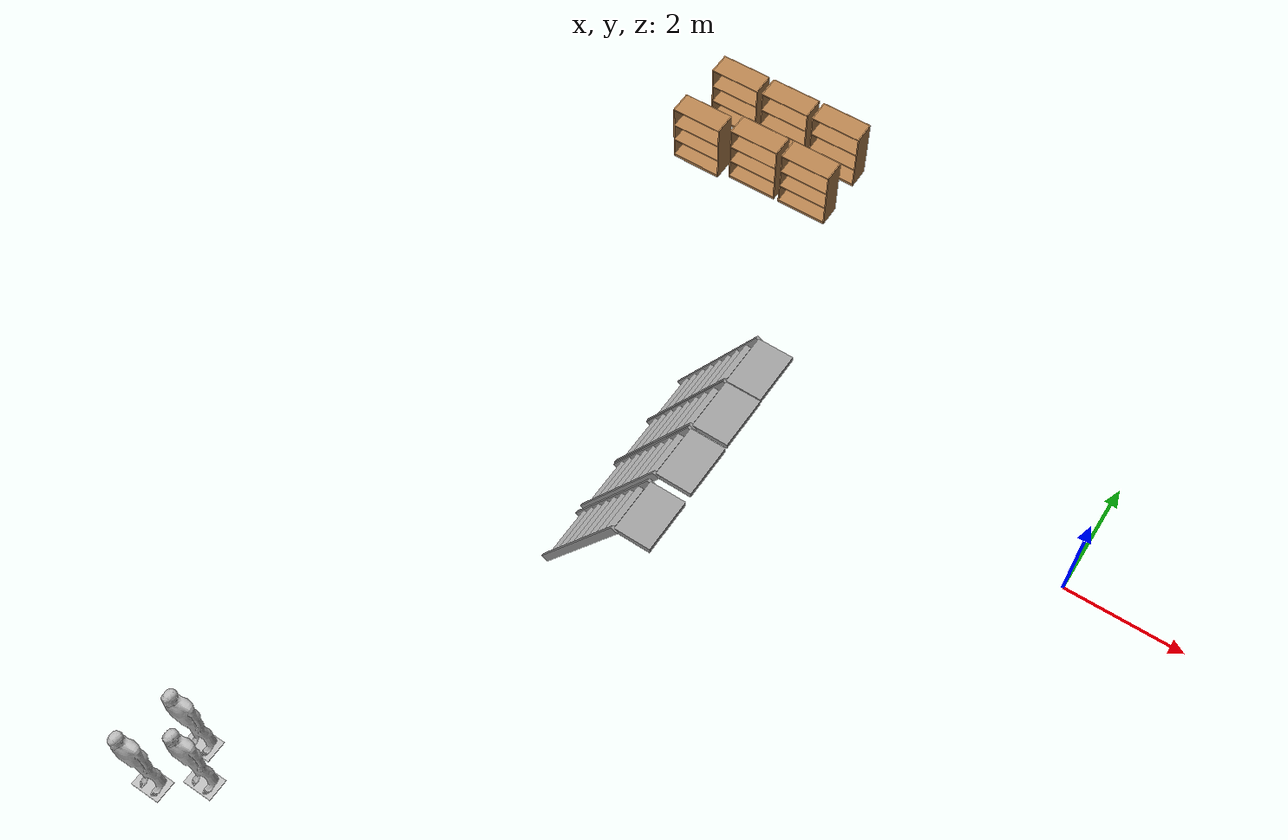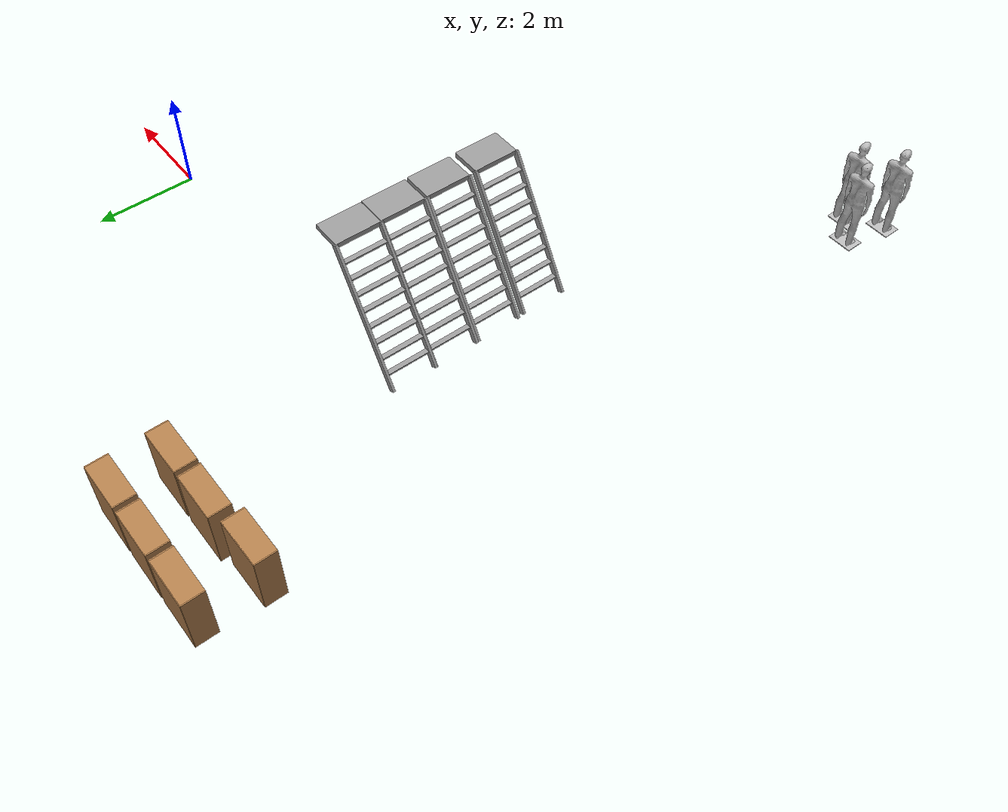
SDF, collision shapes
<sdf version="1.6">
 <model name="indoor_environment_4">
  <model name="bookshelf_clone_12_clone">
   <static>1</static>
   <link name="link">
    <inertial><mass>1</mass></inertial>
    <collision name="back">
     <pose>0 0.005 0.6 0 -0 0</pose>
     <geometry><box><size>0.9 0.01 1.2</size></box></geometry>
    </collision>
    <visual name="visual1">
     <pose>0 0.005 0.6 0 -0 0</pose>
     <geometry><box><size>0.9 0.01 1.2</size></box></geometry>
     <material>
      <script><uri>file://media/materials/scripts/gazebo.material</uri><name>Gazebo/Wood</name></script>
     </material>
    </visual>
    <collision name="left_side">
     <pose>0.45 -0.195 0.6 0 -0 0</pose>
     <geometry><box><size>0.02 0.4 1.2</size></box></geometry>
    </collision>
    <visual name="visual2">
     <pose>0.45 -0.195 0.6 0 -0 0</pose>
     <geometry><box><size>0.02 0.4 1.2</size></box></geometry>
     <material>
      <script><uri>file://media/materials/scripts/gazebo.material</uri><name>Gazebo/Wood</name></script>
     </material>
    </visual>
    <collision name="right_side">
     <pose>-0.45 -0.195 0.6 0 -0 0</pose>
     <geometry><box><size>0.02 0.4 1.2</size></box></geometry>
    </collision>
    <visual name="visual3">
     <pose>-0.45 -0.195 0.6 0 -0 0</pose>
     <geometry><box><size>0.02 0.4 1.2</size></box></geometry>
     <material>
      <script><uri>file://media/materials/scripts/gazebo.material</uri><name>Gazebo/Wood</name></script>
     </material>
    </visual>
    <collision name="bottom">
     <pose>0 -0.195 0.03 0 -0 0</pose>
     <geometry><box><size>0.88 0.4 0.06</size></box></geometry>
    </collision>
    <visual name="visual4">
     <pose>0 -0.195 0.03 0 -0 0</pose>
     <geometry><box><size>0.88 0.4 0.06</size></box></geometry>
     <material>
      <script><uri>file://media/materials/scripts/gazebo.material</uri><name>Gazebo/Wood</name></script>
     </material>
    </visual>
    <collision name="top">
     <pose>0 -0.195 1.19 0 -0 0</pose>
     <geometry><box><size>0.88 0.4 0.02</size></box></geometry>
    </collision>
    <visual name="visual5">
     <pose>0 -0.195 1.19 0 -0 0</pose>
     <geometry><box><size>0.88 0.4 0.02</size></box></geometry>
     <material>
      <script><uri>file://media/materials/scripts/gazebo.material</uri><name>Gazebo/Wood</name></script>
     </material>
    </visual>
    <collision name="low_shelf">
     <pose>0 -0.195 0.43 0 -0 0</pose>
     <geometry><box><size>0.88 0.4 0.02</size></box></geometry>
    </collision>
    <visual name="visual6">
     <pose>0 -0.195 0.43 0 -0 0</pose>
     <geometry><box><size>0.88 0.4 0.02</size></box></geometry>
     <material>
      <script><uri>file://media/materials/scripts/gazebo.material</uri><name>Gazebo/Wood</name></script>
     </material>
    </visual>
    <collision name="high_shelf">
     <pose>0 -0.195 0.8 0 -0 0</pose>
     <geometry><box><size>0.88 0.4 0.02</size></box></geometry>
    </collision>
    <visual name="visual7">
     <pose>0 -0.195 0.8 0 -0 0</pose>
     <geometry><box><size>0.88 0.4 0.02</size></box></geometry>
     <material>
      <script><uri>file://media/materials/scripts/gazebo.material</uri><name>Gazebo/Wood</name></script>
     </material>
    </visual>
   </link>
   <pose>-8.9097 5.04344 0.552309 0 -0 0</pose>
  </model>
  <model name="bookshelf_clone_12_clone_0">
   <static>1</static>
   <link name="link">
    <inertial><mass>1</mass></inertial>
    <collision name="back">
     <pose>0 0.005 0.6 0 -0 0</pose>
     <geometry><box><size>0.9 0.01 1.2</size></box></geometry>
    </collision>
    <visual name="visual1">
     <pose>0 0.005 0.6 0 -0 0</pose>
     <geometry><box><size>0.9 0.01 1.2</size></box></geometry>
     <material>
      <script><uri>file://media/materials/scripts/gazebo.material</uri><name>Gazebo/Wood</name></script>
     </material>
    </visual>
    <collision name="left_side">
     <pose>0.45 -0.195 0.6 0 -0 0</pose>
     <geometry><box><size>0.02 0.4 1.2</size></box></geometry>
    </collision>
    <visual name="visual2">
     <pose>0.45 -0.195 0.6 0 -0 0</pose>
     <geometry><box><size>0.02 0.4 1.2</size></box></geometry>
     <material>
      <script><uri>file://media/materials/scripts/gazebo.material</uri><name>Gazebo/Wood</name></script>
     </material>
    </visual>
    <collision name="right_side">
     <pose>-0.45 -0.195 0.6 0 -0 0</pose>
     <geometry><box><size>0.02 0.4 1.2</size></box></geometry>
    </collision>
    <visual name="visual3">
     <pose>-0.45 -0.195 0.6 0 -0 0</pose>
     <geometry><box><size>0.02 0.4 1.2</size></box></geometry>
     <material>
      <script><uri>file://media/materials/scripts/gazebo.material</uri><name>Gazebo/Wood</name></script>
     </material>
    </visual>
    <collision name="bottom">
     <pose>0 -0.195 0.03 0 -0 0</pose>
     <geometry><box><size>0.88 0.4 0.06</size></box></geometry>
    </collision>
    <visual name="visual4">
     <pose>0 -0.195 0.03 0 -0 0</pose>
     <geometry><box><size>0.88 0.4 0.06</size></box></geometry>
     <material>
      <script><uri>file://media/materials/scripts/gazebo.material</uri><name>Gazebo/Wood</name></script>
     </material>
    </visual>
    <collision name="top">
     <pose>0 -0.195 1.19 0 -0 0</pose>
     <geometry><box><size>0.88 0.4 0.02</size></box></geometry>
    </collision>
    <visual name="visual5">
     <pose>0 -0.195 1.19 0 -0 0</pose>
     <geometry><box><size>0.88 0.4 0.02</size></box></geometry>
     <material>
      <script><uri>file://media/materials/scripts/gazebo.material</uri><name>Gazebo/Wood</name></script>
     </material>
    </visual>
    <collision name="low_shelf">
     <pose>0 -0.195 0.43 0 -0 0</pose>
     <geometry><box><size>0.88 0.4 0.02</size></box></geometry>
    </collision>
    <visual name="visual6">
     <pose>0 -0.195 0.43 0 -0 0</pose>
     <geometry><box><size>0.88 0.4 0.02</size></box></geometry>
     <material>
      <script><uri>file://media/materials/scripts/gazebo.material</uri><name>Gazebo/Wood</name></script>
     </material>
    </visual>
    <collision name="high_shelf">
     <pose>0 -0.195 0.8 0 -0 0</pose>
     <geometry><box><size>0.88 0.4 0.02</size></box></geometry>
    </collision>
    <visual name="visual7">
     <pose>0 -0.195 0.8 0 -0 0</pose>
     <geometry><box><size>0.88 0.4 0.02</size></box></geometry>
     <material>
      <script><uri>file://media/materials/scripts/gazebo.material</uri><name>Gazebo/Wood</name></script>
     </material>
    </visual>
   </link>
   <pose>-7.9097 5.04344 0.552309 0 -0 0</pose>
  </model>
  <model name="bookshelf_clone_12_clone_1">
   <static>1</static>
   <link name="link">
    <inertial><mass>1</mass></inertial>
    <collision name="back">
     <pose>0 0.005 0.6 0 -0 0</pose>
     <geometry><box><size>0.9 0.01 1.2</size></box></geometry>
    </collision>
    <visual name="visual1">
     <pose>0 0.005 0.6 0 -0 0</pose>
     <geometry><box><size>0.9 0.01 1.2</size></box></geometry>
     <material>
      <script><uri>file://media/materials/scripts/gazebo.material</uri><name>Gazebo/Wood</name></script>
     </material>
    </visual>
    <collision name="left_side">
     <pose>0.45 -0.195 0.6 0 -0 0</pose>
     <geometry><box><size>0.02 0.4 1.2</size></box></geometry>
    </collision>
    <visual name="visual2">
     <pose>0.45 -0.195 0.6 0 -0 0</pose>
     <geometry><box><size>0.02 0.4 1.2</size></box></geometry>
     <material>
      <script><uri>file://media/materials/scripts/gazebo.material</uri><name>Gazebo/Wood</name></script>
     </material>
    </visual>
    <collision name="right_side">
     <pose>-0.45 -0.195 0.6 0 -0 0</pose>
     <geometry><box><size>0.02 0.4 1.2</size></box></geometry>
    </collision>
    <visual name="visual3">
     <pose>-0.45 -0.195 0.6 0 -0 0</pose>
     <geometry><box><size>0.02 0.4 1.2</size></box></geometry>
     <material>
      <script><uri>file://media/materials/scripts/gazebo.material</uri><name>Gazebo/Wood</name></script>
     </material>
    </visual>
    <collision name="bottom">
     <pose>0 -0.195 0.03 0 -0 0</pose>
     <geometry><box><size>0.88 0.4 0.06</size></box></geometry>
    </collision>
    <visual name="visual4">
     <pose>0 -0.195 0.03 0 -0 0</pose>
     <geometry><box><size>0.88 0.4 0.06</size></box></geometry>
     <material>
      <script><uri>file://media/materials/scripts/gazebo.material</uri><name>Gazebo/Wood</name></script>
     </material>
    </visual>
    <collision name="top">
     <pose>0 -0.195 1.19 0 -0 0</pose>
     <geometry><box><size>0.88 0.4 0.02</size></box></geometry>
    </collision>
    <visual name="visual5">
     <pose>0 -0.195 1.19 0 -0 0</pose>
     <geometry><box><size>0.88 0.4 0.02</size></box></geometry>
     <material>
      <script><uri>file://media/materials/scripts/gazebo.material</uri><name>Gazebo/Wood</name></script>
     </material>
    </visual>
    <collision name="low_shelf">
     <pose>0 -0.195 0.43 0 -0 0</pose>
     <geometry><box><size>0.88 0.4 0.02</size></box></geometry>
    </collision>
    <visual name="visual6">
     <pose>0 -0.195 0.43 0 -0 0</pose>
     <geometry><box><size>0.88 0.4 0.02</size></box></geometry>
     <material>
      <script><uri>file://media/materials/scripts/gazebo.material</uri><name>Gazebo/Wood</name></script>
     </material>
    </visual>
    <collision name="high_shelf">
     <pose>0 -0.195 0.8 0 -0 0</pose>
     <geometry><box><size>0.88 0.4 0.02</size></box></geometry>
    </collision>
    <visual name="visual7">
     <pose>0 -0.195 0.8 0 -0 0</pose>
     <geometry><box><size>0.88 0.4 0.02</size></box></geometry>
     <material>
      <script><uri>file://media/materials/scripts/gazebo.material</uri><name>Gazebo/Wood</name></script>
     </material>
    </visual>
   </link>
   <pose>-6.9097 5.04344 0.552309 0 -0 0</pose>
  </model>
  <model name="bookshelf_clone_12_clone_5">
   <static>1</static>
   <link name="link">
    <inertial><mass>1</mass></inertial>
    <collision name="back">
     <pose>0 0.005 0.6 0 -0 0</pose>
     <geometry><box><size>0.9 0.01 1.2</size></box></geometry>
    </collision>
    <visual name="visual1">
     <pose>0 0.005 0.6 0 -0 0</pose>
     <geometry><box><size>0.9 0.01 1.2</size></box></geometry>
     <material>
      <script><uri>file://media/materials/scripts/gazebo.material</uri><name>Gazebo/Wood</name></script>
     </material>
    </visual>
    <collision name="left_side">
     <pose>0.45 -0.195 0.6 0 -0 0</pose>
     <geometry><box><size>0.02 0.4 1.2</size></box></geometry>
    </collision>
    <visual name="visual2">
     <pose>0.45 -0.195 0.6 0 -0 0</pose>
     <geometry><box><size>0.02 0.4 1.2</size></box></geometry>
     <material>
      <script><uri>file://media/materials/scripts/gazebo.material</uri><name>Gazebo/Wood</name></script>
     </material>
    </visual>
    <collision name="right_side">
     <pose>-0.45 -0.195 0.6 0 -0 0</pose>
     <geometry><box><size>0.02 0.4 1.2</size></box></geometry>
    </collision>
    <visual name="visual3">
     <pose>-0.45 -0.195 0.6 0 -0 0</pose>
     <geometry><box><size>0.02 0.4 1.2</size></box></geometry>
     <material>
      <script><uri>file://media/materials/scripts/gazebo.material</uri><name>Gazebo/Wood</name></script>
     </material>
    </visual>
    <collision name="bottom">
     <pose>0 -0.195 0.03 0 -0 0</pose>
     <geometry><box><size>0.88 0.4 0.06</size></box></geometry>
    </collision>
    <visual name="visual4">
     <pose>0 -0.195 0.03 0 -0 0</pose>
     <geometry><box><size>0.88 0.4 0.06</size></box></geometry>
     <material>
      <script><uri>file://media/materials/scripts/gazebo.material</uri><name>Gazebo/Wood</name></script>
     </material>
    </visual>
    <collision name="top">
     <pose>0 -0.195 1.19 0 -0 0</pose>
     <geometry><box><size>0.88 0.4 0.02</size></box></geometry>
    </collision>
    <visual name="visual5">
     <pose>0 -0.195 1.19 0 -0 0</pose>
     <geometry><box><size>0.88 0.4 0.02</size></box></geometry>
     <material>
      <script><uri>file://media/materials/scripts/gazebo.material</uri><name>Gazebo/Wood</name></script>
     </material>
    </visual>
    <collision name="low_shelf">
     <pose>0 -0.195 0.43 0 -0 0</pose>
     <geometry><box><size>0.88 0.4 0.02</size></box></geometry>
    </collision>
    <visual name="visual6">
     <pose>0 -0.195 0.43 0 -0 0</pose>
     <geometry><box><size>0.88 0.4 0.02</size></box></geometry>
     <material>
      <script><uri>file://media/materials/scripts/gazebo.material</uri><name>Gazebo/Wood</name></script>
     </material>
    </visual>
    <collision name="high_shelf">
     <pose>0 -0.195 0.8 0 -0 0</pose>
     <geometry><box><size>0.88 0.4 0.02</size></box></geometry>
    </collision>
    <visual name="visual7">
     <pose>0 -0.195 0.8 0 -0 0</pose>
     <geometry><box><size>0.88 0.4 0.02</size></box></geometry>
     <material>
      <script><uri>file://media/materials/scripts/gazebo.material</uri><name>Gazebo/Wood</name></script>
     </material>
    </visual>
   </link>
   <pose>-6.9097 4.04344 0.552309 0 -0 0</pose>
  </model>
  <model name="bookshelf_clone_12_clone_6">
   <static>1</static>
   <link name="link">
    <inertial><mass>1</mass></inertial>
    <collision name="back">
     <pose>0 0.005 0.6 0 -0 0</pose>
     <geometry><box><size>0.9 0.01 1.2</size></box></geometry>
    </collision>
    <visual name="visual1">
     <pose>0 0.005 0.6 0 -0 0</pose>
     <geometry><box><size>0.9 0.01 1.2</size></box></geometry>
     <material>
      <script><uri>file://media/materials/scripts/gazebo.material</uri><name>Gazebo/Wood</name></script>
     </material>
    </visual>
    <collision name="left_side">
     <pose>0.45 -0.195 0.6 0 -0 0</pose>
     <geometry><box><size>0.02 0.4 1.2</size></box></geometry>
    </collision>
    <visual name="visual2">
     <pose>0.45 -0.195 0.6 0 -0 0</pose>
     <geometry><box><size>0.02 0.4 1.2</size></box></geometry>
     <material>
      <script><uri>file://media/materials/scripts/gazebo.material</uri><name>Gazebo/Wood</name></script>
     </material>
    </visual>
    <collision name="right_side">
     <pose>-0.45 -0.195 0.6 0 -0 0</pose>
     <geometry><box><size>0.02 0.4 1.2</size></box></geometry>
    </collision>
    <visual name="visual3">
     <pose>-0.45 -0.195 0.6 0 -0 0</pose>
     <geometry><box><size>0.02 0.4 1.2</size></box></geometry>
     <material>
      <script><uri>file://media/materials/scripts/gazebo.material</uri><name>Gazebo/Wood</name></script>
     </material>
    </visual>
    <collision name="bottom">
     <pose>0 -0.195 0.03 0 -0 0</pose>
     <geometry><box><size>0.88 0.4 0.06</size></box></geometry>
    </collision>
    <visual name="visual4">
     <pose>0 -0.195 0.03 0 -0 0</pose>
     <geometry><box><size>0.88 0.4 0.06</size></box></geometry>
     <material>
      <script><uri>file://media/materials/scripts/gazebo.material</uri><name>Gazebo/Wood</name></script>
     </material>
    </visual>
    <collision name="top">
     <pose>0 -0.195 1.19 0 -0 0</pose>
     <geometry><box><size>0.88 0.4 0.02</size></box></geometry>
    </collision>
    <visual name="visual5">
     <pose>0 -0.195 1.19 0 -0 0</pose>
     <geometry><box><size>0.88 0.4 0.02</size></box></geometry>
     <material>
      <script><uri>file://media/materials/scripts/gazebo.material</uri><name>Gazebo/Wood</name></script>
     </material>
    </visual>
    <collision name="low_shelf">
     <pose>0 -0.195 0.43 0 -0 0</pose>
     <geometry><box><size>0.88 0.4 0.02</size></box></geometry>
    </collision>
    <visual name="visual6">
     <pose>0 -0.195 0.43 0 -0 0</pose>
     <geometry><box><size>0.88 0.4 0.02</size></box></geometry>
     <material>
      <script><uri>file://media/materials/scripts/gazebo.material</uri><name>Gazebo/Wood</name></script>
     </material>
    </visual>
    <collision name="high_shelf">
     <pose>0 -0.195 0.8 0 -0 0</pose>
     <geometry><box><size>0.88 0.4 0.02</size></box></geometry>
    </collision>
    <visual name="visual7">
     <pose>0 -0.195 0.8 0 -0 0</pose>
     <geometry><box><size>0.88 0.4 0.02</size></box></geometry>
     <material>
      <script><uri>file://media/materials/scripts/gazebo.material</uri><name>Gazebo/Wood</name></script>
     </material>
    </visual>
   </link>
   <pose>-7.9097 4.04344 0.552309 0 -0 0</pose>
  </model>
  <model name="bookshelf_clone_12_clone_7">
   <static>1</static>
   <link name="link">
    <inertial><mass>1</mass></inertial>
    <collision name="back">
     <pose>0 0.005 0.6 0 -0 0</pose>
     <geometry><box><size>0.9 0.01 1.2</size></box></geometry>
    </collision>
    <visual name="visual1">
     <pose>0 0.005 0.6 0 -0 0</pose>
     <geometry><box><size>0.9 0.01 1.2</size></box></geometry>
     <material>
      <script><uri>file://media/materials/scripts/gazebo.material</uri><name>Gazebo/Wood</name></script>
     </material>
    </visual>
    <collision name="left_side">
     <pose>0.45 -0.195 0.6 0 -0 0</pose>
     <geometry><box><size>0.02 0.4 1.2</size></box></geometry>
    </collision>
    <visual name="visual2">
     <pose>0.45 -0.195 0.6 0 -0 0</pose>
     <geometry><box><size>0.02 0.4 1.2</size></box></geometry>
     <material>
      <script><uri>file://media/materials/scripts/gazebo.material</uri><name>Gazebo/Wood</name></script>
     </material>
    </visual>
    <collision name="right_side">
     <pose>-0.45 -0.195 0.6 0 -0 0</pose>
     <geometry><box><size>0.02 0.4 1.2</size></box></geometry>
    </collision>
    <visual name="visual3">
     <pose>-0.45 -0.195 0.6 0 -0 0</pose>
     <geometry><box><size>0.02 0.4 1.2</size></box></geometry>
     <material>
      <script><uri>file://media/materials/scripts/gazebo.material</uri><name>Gazebo/Wood</name></script>
     </material>
    </visual>
    <collision name="bottom">
     <pose>0 -0.195 0.03 0 -0 0</pose>
     <geometry><box><size>0.88 0.4 0.06</size></box></geometry>
    </collision>
    <visual name="visual4">
     <pose>0 -0.195 0.03 0 -0 0</pose>
     <geometry><box><size>0.88 0.4 0.06</size></box></geometry>
     <material>
      <script><uri>file://media/materials/scripts/gazebo.material</uri><name>Gazebo/Wood</name></script>
     </material>
    </visual>
    <collision name="top">
     <pose>0 -0.195 1.19 0 -0 0</pose>
     <geometry><box><size>0.88 0.4 0.02</size></box></geometry>
    </collision>
    <visual name="visual5">
     <pose>0 -0.195 1.19 0 -0 0</pose>
     <geometry><box><size>0.88 0.4 0.02</size></box></geometry>
     <material>
      <script><uri>file://media/materials/scripts/gazebo.material</uri><name>Gazebo/Wood</name></script>
     </material>
    </visual>
    <collision name="low_shelf">
     <pose>0 -0.195 0.43 0 -0 0</pose>
     <geometry><box><size>0.88 0.4 0.02</size></box></geometry>
    </collision>
    <visual name="visual6">
     <pose>0 -0.195 0.43 0 -0 0</pose>
     <geometry><box><size>0.88 0.4 0.02</size></box></geometry>
     <material>
      <script><uri>file://media/materials/scripts/gazebo.material</uri><name>Gazebo/Wood</name></script>
     </material>
    </visual>
    <collision name="high_shelf">
     <pose>0 -0.195 0.8 0 -0 0</pose>
     <geometry><box><size>0.88 0.4 0.02</size></box></geometry>
    </collision>
    <visual name="visual7">
     <pose>0 -0.195 0.8 0 -0 0</pose>
     <geometry><box><size>0.88 0.4 0.02</size></box></geometry>
     <material>
      <script><uri>file://media/materials/scripts/gazebo.material</uri><name>Gazebo/Wood</name></script>
     </material>
    </visual>
   </link>
   <pose>-8.98148 3.92656 0.552309 0 -0 0</pose>
  </model>
  <model name="ladder_60deg_0rails_clone">
   <static>1</static>
   <link name="step0">
    <pose>0 0.15396 0.266667 0 -0 0</pose>
    <inertial>
     <mass>9.75482</mass>
     <inertia>
      <ixx>0.00957124</ixx>
      <iyy>0.65963</iyy>
      <izz>0.666842</izz>
      <ixy>0</ixy>
      <ixz>0</ixz>
      <iyz>0</iyz>
     </inertia>
    </inertial>
    <collision name="collision"><geometry><box><size>0.9 0.1016 0.0381</size></box></geometry></collision>
    <visual name="visual">
     <geometry><box><size>0.9 0.1016 0.0381</size></box></geometry>
     <material>
      <script><uri>file://media/materials/scripts/gazebo.material</uri><name>Gazebo/Grey</name></script>
     </material>
    </visual>
   </link>
   <link name="step1">
    <pose>0 0.30792 0.533333 0 -0 0</pose>
    <inertial>
     <mass>9.75482</mass>
     <inertia>
      <ixx>0.00957124</ixx>
      <iyy>0.65963</iyy>
      <izz>0.666842</izz>
      <ixy>0</ixy>
      <ixz>0</ixz>
      <iyz>0</iyz>
     </inertia>
    </inertial>
    <collision name="collision"><geometry><box><size>0.9 0.1016 0.0381</size></box></geometry></collision>
    <visual name="visual">
     <geometry><box><size>0.9 0.1016 0.0381</size></box></geometry>
     <material>
      <script><uri>file://media/materials/scripts/gazebo.material</uri><name>Gazebo/Grey</name></script>
     </material>
    </visual>
   </link>
   <link name="step2">
    <pose>0 0.46188 0.8 0 -0 0</pose>
    <inertial>
     <mass>9.75482</mass>
     <inertia>
      <ixx>0.00957124</ixx>
      <iyy>0.65963</iyy>
      <izz>0.666842</izz>
      <ixy>0</ixy>
      <ixz>0</ixz>
      <iyz>0</iyz>
     </inertia>
    </inertial>
    <collision name="collision"><geometry><box><size>0.9 0.1016 0.0381</size></box></geometry></collision>
    <visual name="visual">
     <geometry><box><size>0.9 0.1016 0.0381</size></box></geometry>
     <material>
      <script><uri>file://media/materials/scripts/gazebo.material</uri><name>Gazebo/Grey</name></script>
     </material>
    </visual>
   </link>
   <link name="step3">
    <pose>0 0.61584 1.06667 0 -0 0</pose>
    <inertial>
     <mass>9.75482</mass>
     <inertia>
      <ixx>0.00957124</ixx>
      <iyy>0.65963</iyy>
      <izz>0.666842</izz>
      <ixy>0</ixy>
      <ixz>0</ixz>
      <iyz>0</iyz>
     </inertia>
    </inertial>
    <collision name="collision"><geometry><box><size>0.9 0.1016 0.0381</size></box></geometry></collision>
    <visual name="visual">
     <geometry><box><size>0.9 0.1016 0.0381</size></box></geometry>
     <material>
      <script><uri>file://media/materials/scripts/gazebo.material</uri><name>Gazebo/Grey</name></script>
     </material>
    </visual>
   </link>
   <link name="step4">
    <pose>0 0.7698 1.33333 0 -0 0</pose>
    <inertial>
     <mass>9.75482</mass>
     <inertia>
      <ixx>0.00957124</ixx>
      <iyy>0.65963</iyy>
      <izz>0.666842</izz>
      <ixy>0</ixy>
      <ixz>0</ixz>
      <iyz>0</iyz>
     </inertia>
    </inertial>
    <collision name="collision"><geometry><box><size>0.9 0.1016 0.0381</size></box></geometry></collision>
    <visual name="visual">
     <geometry><box><size>0.9 0.1016 0.0381</size></box></geometry>
     <material>
      <script><uri>file://media/materials/scripts/gazebo.material</uri><name>Gazebo/Grey</name></script>
     </material>
    </visual>
   </link>
   <link name="step5">
    <pose>0 0.92376 1.6 0 -0 0</pose>
    <inertial>
     <mass>9.75482</mass>
     <inertia>
      <ixx>0.00957124</ixx>
      <iyy>0.65963</iyy>
      <izz>0.666842</izz>
      <ixy>0</ixy>
      <ixz>0</ixz>
      <iyz>0</iyz>
     </inertia>
    </inertial>
    <collision name="collision"><geometry><box><size>0.9 0.1016 0.0381</size></box></geometry></collision>
    <visual name="visual">
     <geometry><box><size>0.9 0.1016 0.0381</size></box></geometry>
     <material>
      <script><uri>file://media/materials/scripts/gazebo.material</uri><name>Gazebo/Grey</name></script>
     </material>
    </visual>
   </link>
   <link name="step6">
    <pose>0 1.07772 1.86667 0 -0 0</pose>
    <inertial>
     <mass>9.75482</mass>
     <inertia>
      <ixx>0.00957124</ixx>
      <iyy>0.65963</iyy>
      <izz>0.666842</izz>
      <ixy>0</ixy>
      <ixz>0</ixz>
      <iyz>0</iyz>
     </inertia>
    </inertial>
    <collision name="collision"><geometry><box><size>0.9 0.1016 0.0381</size></box></geometry></collision>
    <visual name="visual">
     <geometry><box><size>0.9 0.1016 0.0381</size></box></geometry>
     <material>
      <script><uri>file://media/materials/scripts/gazebo.material</uri><name>Gazebo/Grey</name></script>
     </material>
    </visual>
   </link>
   <link name="step7">
    <pose>0 1.23168 2.13333 0 -0 0</pose>
    <inertial>
     <mass>9.75482</mass>
     <inertia>
      <ixx>0.00957124</ixx>
      <iyy>0.65963</iyy>
      <izz>0.666842</izz>
      <ixy>0</ixy>
      <ixz>0</ixz>
      <iyz>0</iyz>
     </inertia>
    </inertial>
    <collision name="collision"><geometry><box><size>0.9 0.1016 0.0381</size></box></geometry></collision>
    <visual name="visual">
     <geometry><box><size>0.9 0.1016 0.0381</size></box></geometry>
     <material>
      <script><uri>file://media/materials/scripts/gazebo.material</uri><name>Gazebo/Grey</name></script>
     </material>
    </visual>
   </link>
   <link name="landing">
    <pose>0 1.68564 2.4 0 -0 0</pose>
    <inertial>
     <mass>57.6072</mass>
     <inertia><ixx>1.73518</ixx><iyy>3.89545</iyy><izz>5.6167</izz><ixy>0</ixy><ixz>0</ixz><iyz>0</iyz></inertia>
    </inertial>
    <collision name="collision"><geometry><box><size>0.9 0.6 0.1016</size></box></geometry></collision>
    <visual name="visual">
     <geometry><box><size>0.9 0.6 0.1016</size></box></geometry>
     <material>
      <script><uri>file://media/materials/scripts/gazebo.material</uri><name>Gazebo/Grey</name></script>
     </material>
    </visual>
   </link>
   <link name="left_side_wall">
    <pose>-0.45 0.69282 1.2 1.0472 -0 0</pose>
    <collision name="collision"><geometry><box><size>0.0508 2.85128 0.13</size></box></geometry></collision>
    <visual name="visual">
     <geometry><box><size>0.0508 2.85128 0.13</size></box></geometry>
     <material>
      <script><uri>file://media/materials/scripts/gazebo.material</uri><name>Gazebo/Grey</name></script>
     </material>
    </visual>
   </link>
   <link name="right_side_wall">
    <pose>0.45 0.69282 1.2 1.0472 -0 0</pose>
    <collision name="collision"><geometry><box><size>0.0508 2.85128 0.13</size></box></geometry></collision>
    <visual name="visual">
     <geometry><box><size>0.0508 2.85128 0.13</size></box></geometry>
     <material>
      <script><uri>file://media/materials/scripts/gazebo.material</uri><name>Gazebo/Grey</name></script>
     </material>
    </visual>
   </link>
   <pose>-6.9097 -0.536757 0 0 0 -1.58324</pose>
  </model>
  <model name="ladder_60deg_0rails_clone_0">
   <static>1</static>
   <link name="step0">
    <pose>0 0.15396 0.266667 0 -0 0</pose>
    <inertial>
     <mass>9.75482</mass>
     <inertia>
      <ixx>0.00957124</ixx>
      <iyy>0.65963</iyy>
      <izz>0.666842</izz>
      <ixy>0</ixy>
      <ixz>0</ixz>
      <iyz>0</iyz>
     </inertia>
    </inertial>
    <collision name="collision"><geometry><box><size>0.9 0.1016 0.0381</size></box></geometry></collision>
    <visual name="visual">
     <geometry><box><size>0.9 0.1016 0.0381</size></box></geometry>
     <material>
      <script><uri>file://media/materials/scripts/gazebo.material</uri><name>Gazebo/Grey</name></script>
     </material>
    </visual>
   </link>
   <link name="step1">
    <pose>0 0.30792 0.533333 0 -0 0</pose>
    <inertial>
     <mass>9.75482</mass>
     <inertia>
      <ixx>0.00957124</ixx>
      <iyy>0.65963</iyy>
      <izz>0.666842</izz>
      <ixy>0</ixy>
      <ixz>0</ixz>
      <iyz>0</iyz>
     </inertia>
    </inertial>
    <collision name="collision"><geometry><box><size>0.9 0.1016 0.0381</size></box></geometry></collision>
    <visual name="visual">
     <geometry><box><size>0.9 0.1016 0.0381</size></box></geometry>
     <material>
      <script><uri>file://media/materials/scripts/gazebo.material</uri><name>Gazebo/Grey</name></script>
     </material>
    </visual>
   </link>
   <link name="step2">
    <pose>0 0.46188 0.8 0 -0 0</pose>
    <inertial>
     <mass>9.75482</mass>
     <inertia>
      <ixx>0.00957124</ixx>
      <iyy>0.65963</iyy>
      <izz>0.666842</izz>
      <ixy>0</ixy>
      <ixz>0</ixz>
      <iyz>0</iyz>
     </inertia>
    </inertial>
    <collision name="collision"><geometry><box><size>0.9 0.1016 0.0381</size></box></geometry></collision>
    <visual name="visual">
     <geometry><box><size>0.9 0.1016 0.0381</size></box></geometry>
     <material>
      <script><uri>file://media/materials/scripts/gazebo.material</uri><name>Gazebo/Grey</name></script>
     </material>
    </visual>
   </link>
   <link name="step3">
    <pose>0 0.61584 1.06667 0 -0 0</pose>
    <inertial>
     <mass>9.75482</mass>
     <inertia>
      <ixx>0.00957124</ixx>
      <iyy>0.65963</iyy>
      <izz>0.666842</izz>
      <ixy>0</ixy>
      <ixz>0</ixz>
      <iyz>0</iyz>
     </inertia>
    </inertial>
    <collision name="collision"><geometry><box><size>0.9 0.1016 0.0381</size></box></geometry></collision>
    <visual name="visual">
     <geometry><box><size>0.9 0.1016 0.0381</size></box></geometry>
     <material>
      <script><uri>file://media/materials/scripts/gazebo.material</uri><name>Gazebo/Grey</name></script>
     </material>
    </visual>
   </link>
   <link name="step4">
    <pose>0 0.7698 1.33333 0 -0 0</pose>
    <inertial>
     <mass>9.75482</mass>
     <inertia>
      <ixx>0.00957124</ixx>
      <iyy>0.65963</iyy>
      <izz>0.666842</izz>
      <ixy>0</ixy>
      <ixz>0</ixz>
      <iyz>0</iyz>
     </inertia>
    </inertial>
    <collision name="collision"><geometry><box><size>0.9 0.1016 0.0381</size></box></geometry></collision>
    <visual name="visual">
     <geometry><box><size>0.9 0.1016 0.0381</size></box></geometry>
     <material>
      <script><uri>file://media/materials/scripts/gazebo.material</uri><name>Gazebo/Grey</name></script>
     </material>
    </visual>
   </link>
   <link name="step5">
    <pose>0 0.92376 1.6 0 -0 0</pose>
    <inertial>
     <mass>9.75482</mass>
     <inertia>
      <ixx>0.00957124</ixx>
      <iyy>0.65963</iyy>
      <izz>0.666842</izz>
      <ixy>0</ixy>
      <ixz>0</ixz>
      <iyz>0</iyz>
     </inertia>
    </inertial>
    <collision name="collision"><geometry><box><size>0.9 0.1016 0.0381</size></box></geometry></collision>
    <visual name="visual">
     <geometry><box><size>0.9 0.1016 0.0381</size></box></geometry>
     <material>
      <script><uri>file://media/materials/scripts/gazebo.material</uri><name>Gazebo/Grey</name></script>
     </material>
    </visual>
   </link>
   <link name="step6">
    <pose>0 1.07772 1.86667 0 -0 0</pose>
    <inertial>
     <mass>9.75482</mass>
     <inertia>
      <ixx>0.00957124</ixx>
      <iyy>0.65963</iyy>
      <izz>0.666842</izz>
      <ixy>0</ixy>
      <ixz>0</ixz>
      <iyz>0</iyz>
     </inertia>
    </inertial>
    <collision name="collision"><geometry><box><size>0.9 0.1016 0.0381</size></box></geometry></collision>
    <visual name="visual">
     <geometry><box><size>0.9 0.1016 0.0381</size></box></geometry>
     <material>
      <script><uri>file://media/materials/scripts/gazebo.material</uri><name>Gazebo/Grey</name></script>
     </material>
    </visual>
   </link>
   <link name="step7">
    <pose>0 1.23168 2.13333 0 -0 0</pose>
    <inertial>
     <mass>9.75482</mass>
     <inertia>
      <ixx>0.00957124</ixx>
      <iyy>0.65963</iyy>
      <izz>0.666842</izz>
      <ixy>0</ixy>
      <ixz>0</ixz>
      <iyz>0</iyz>
     </inertia>
    </inertial>
    <collision name="collision"><geometry><box><size>0.9 0.1016 0.0381</size></box></geometry></collision>
    <visual name="visual">
     <geometry><box><size>0.9 0.1016 0.0381</size></box></geometry>
     <material>
      <script><uri>file://media/materials/scripts/gazebo.material</uri><name>Gazebo/Grey</name></script>
     </material>
    </visual>
   </link>
   <link name="landing">
    <pose>0 1.68564 2.4 0 -0 0</pose>
    <inertial>
     <mass>57.6072</mass>
     <inertia><ixx>1.73518</ixx><iyy>3.89545</iyy><izz>5.6167</izz><ixy>0</ixy><ixz>0</ixz><iyz>0</iyz></inertia>
    </inertial>
    <collision name="collision"><geometry><box><size>0.9 0.6 0.1016</size></box></geometry></collision>
    <visual name="visual">
     <geometry><box><size>0.9 0.6 0.1016</size></box></geometry>
     <material>
      <script><uri>file://media/materials/scripts/gazebo.material</uri><name>Gazebo/Grey</name></script>
     </material>
    </visual>
   </link>
   <link name="left_side_wall">
    <pose>-0.45 0.69282 1.2 1.0472 -0 0</pose>
    <collision name="collision"><geometry><box><size>0.0508 2.85128 0.13</size></box></geometry></collision>
    <visual name="visual">
     <geometry><box><size>0.0508 2.85128 0.13</size></box></geometry>
     <material>
      <script><uri>file://media/materials/scripts/gazebo.material</uri><name>Gazebo/Grey</name></script>
     </material>
    </visual>
   </link>
   <link name="right_side_wall">
    <pose>0.45 0.69282 1.2 1.0472 -0 0</pose>
    <collision name="collision"><geometry><box><size>0.0508 2.85128 0.13</size></box></geometry></collision>
    <visual name="visual">
     <geometry><box><size>0.0508 2.85128 0.13</size></box></geometry>
     <material>
      <script><uri>file://media/materials/scripts/gazebo.material</uri><name>Gazebo/Grey</name></script>
     </material>
    </visual>
   </link>
   <pose>-6.9097 -1.45121 0 0 0 -1.58324</pose>
  </model>
  <model name="ladder_60deg_0rails_clone_1">
   <static>1</static>
   <link name="step0">
    <pose>0 0.15396 0.266667 0 -0 0</pose>
    <inertial>
     <mass>9.75482</mass>
     <inertia>
      <ixx>0.00957124</ixx>
      <iyy>0.65963</iyy>
      <izz>0.666842</izz>
      <ixy>0</ixy>
      <ixz>0</ixz>
      <iyz>0</iyz>
     </inertia>
    </inertial>
    <collision name="collision"><geometry><box><size>0.9 0.1016 0.0381</size></box></geometry></collision>
    <visual name="visual">
     <geometry><box><size>0.9 0.1016 0.0381</size></box></geometry>
     <material>
      <script><uri>file://media/materials/scripts/gazebo.material</uri><name>Gazebo/Grey</name></script>
     </material>
    </visual>
   </link>
   <link name="step1">
    <pose>0 0.30792 0.533333 0 -0 0</pose>
    <inertial>
     <mass>9.75482</mass>
     <inertia>
      <ixx>0.00957124</ixx>
      <iyy>0.65963</iyy>
      <izz>0.666842</izz>
      <ixy>0</ixy>
      <ixz>0</ixz>
      <iyz>0</iyz>
     </inertia>
    </inertial>
    <collision name="collision"><geometry><box><size>0.9 0.1016 0.0381</size></box></geometry></collision>
    <visual name="visual">
     <geometry><box><size>0.9 0.1016 0.0381</size></box></geometry>
     <material>
      <script><uri>file://media/materials/scripts/gazebo.material</uri><name>Gazebo/Grey</name></script>
     </material>
    </visual>
   </link>
   <link name="step2">
    <pose>0 0.46188 0.8 0 -0 0</pose>
    <inertial>
     <mass>9.75482</mass>
     <inertia>
      <ixx>0.00957124</ixx>
      <iyy>0.65963</iyy>
      <izz>0.666842</izz>
      <ixy>0</ixy>
      <ixz>0</ixz>
      <iyz>0</iyz>
     </inertia>
    </inertial>
    <collision name="collision"><geometry><box><size>0.9 0.1016 0.0381</size></box></geometry></collision>
    <visual name="visual">
     <geometry><box><size>0.9 0.1016 0.0381</size></box></geometry>
     <material>
      <script><uri>file://media/materials/scripts/gazebo.material</uri><name>Gazebo/Grey</name></script>
     </material>
    </visual>
   </link>
   <link name="step3">
    <pose>0 0.61584 1.06667 0 -0 0</pose>
    <inertial>
     <mass>9.75482</mass>
     <inertia>
      <ixx>0.00957124</ixx>
      <iyy>0.65963</iyy>
      <izz>0.666842</izz>
      <ixy>0</ixy>
      <ixz>0</ixz>
      <iyz>0</iyz>
     </inertia>
    </inertial>
    <collision name="collision"><geometry><box><size>0.9 0.1016 0.0381</size></box></geometry></collision>
    <visual name="visual">
     <geometry><box><size>0.9 0.1016 0.0381</size></box></geometry>
     <material>
      <script><uri>file://media/materials/scripts/gazebo.material</uri><name>Gazebo/Grey</name></script>
     </material>
    </visual>
   </link>
   <link name="step4">
    <pose>0 0.7698 1.33333 0 -0 0</pose>
    <inertial>
     <mass>9.75482</mass>
     <inertia>
      <ixx>0.00957124</ixx>
      <iyy>0.65963</iyy>
      <izz>0.666842</izz>
      <ixy>0</ixy>
      <ixz>0</ixz>
      <iyz>0</iyz>
     </inertia>
    </inertial>
    <collision name="collision"><geometry><box><size>0.9 0.1016 0.0381</size></box></geometry></collision>
    <visual name="visual">
     <geometry><box><size>0.9 0.1016 0.0381</size></box></geometry>
     <material>
      <script><uri>file://media/materials/scripts/gazebo.material</uri><name>Gazebo/Grey</name></script>
     </material>
    </visual>
   </link>
   <link name="step5">
    <pose>0 0.92376 1.6 0 -0 0</pose>
    <inertial>
     <mass>9.75482</mass>
     <inertia>
      <ixx>0.00957124</ixx>
      <iyy>0.65963</iyy>
      <izz>0.666842</izz>
      <ixy>0</ixy>
      <ixz>0</ixz>
      <iyz>0</iyz>
     </inertia>
    </inertial>
    <collision name="collision"><geometry><box><size>0.9 0.1016 0.0381</size></box></geometry></collision>
    <visual name="visual">
     <geometry><box><size>0.9 0.1016 0.0381</size></box></geometry>
     <material>
      <script><uri>file://media/materials/scripts/gazebo.material</uri><name>Gazebo/Grey</name></script>
     </material>
    </visual>
   </link>
   <link name="step6">
    <pose>0 1.07772 1.86667 0 -0 0</pose>
    <inertial>
     <mass>9.75482</mass>
     <inertia>
      <ixx>0.00957124</ixx>
      <iyy>0.65963</iyy>
      <izz>0.666842</izz>
      <ixy>0</ixy>
      <ixz>0</ixz>
      <iyz>0</iyz>
     </inertia>
    </inertial>
    <collision name="collision"><geometry><box><size>0.9 0.1016 0.0381</size></box></geometry></collision>
    <visual name="visual">
     <geometry><box><size>0.9 0.1016 0.0381</size></box></geometry>
     <material>
      <script><uri>file://media/materials/scripts/gazebo.material</uri><name>Gazebo/Grey</name></script>
     </material>
    </visual>
   </link>
   <link name="step7">
    <pose>0 1.23168 2.13333 0 -0 0</pose>
    <inertial>
     <mass>9.75482</mass>
     <inertia>
      <ixx>0.00957124</ixx>
      <iyy>0.65963</iyy>
      <izz>0.666842</izz>
      <ixy>0</ixy>
      <ixz>0</ixz>
      <iyz>0</iyz>
     </inertia>
    </inertial>
    <collision name="collision"><geometry><box><size>0.9 0.1016 0.0381</size></box></geometry></collision>
    <visual name="visual">
     <geometry><box><size>0.9 0.1016 0.0381</size></box></geometry>
     <material>
      <script><uri>file://media/materials/scripts/gazebo.material</uri><name>Gazebo/Grey</name></script>
     </material>
    </visual>
   </link>
   <link name="landing">
    <pose>0 1.68564 2.4 0 -0 0</pose>
    <inertial>
     <mass>57.6072</mass>
     <inertia><ixx>1.73518</ixx><iyy>3.89545</iyy><izz>5.6167</izz><ixy>0</ixy><ixz>0</ixz><iyz>0</iyz></inertia>
    </inertial>
    <collision name="collision"><geometry><box><size>0.9 0.6 0.1016</size></box></geometry></collision>
    <visual name="visual">
     <geometry><box><size>0.9 0.6 0.1016</size></box></geometry>
     <material>
      <script><uri>file://media/materials/scripts/gazebo.material</uri><name>Gazebo/Grey</name></script>
     </material>
    </visual>
   </link>
   <link name="left_side_wall">
    <pose>-0.45 0.69282 1.2 1.0472 -0 0</pose>
    <collision name="collision"><geometry><box><size>0.0508 2.85128 0.13</size></box></geometry></collision>
    <visual name="visual">
     <geometry><box><size>0.0508 2.85128 0.13</size></box></geometry>
     <material>
      <script><uri>file://media/materials/scripts/gazebo.material</uri><name>Gazebo/Grey</name></script>
     </material>
    </visual>
   </link>
   <link name="right_side_wall">
    <pose>0.45 0.69282 1.2 1.0472 -0 0</pose>
    <collision name="collision"><geometry><box><size>0.0508 2.85128 0.13</size></box></geometry></collision>
    <visual name="visual">
     <geometry><box><size>0.0508 2.85128 0.13</size></box></geometry>
     <material>
      <script><uri>file://media/materials/scripts/gazebo.material</uri><name>Gazebo/Grey</name></script>
     </material>
    </visual>
   </link>
   <pose>-6.9097 -2.40528 0 0 0 -1.58324</pose>
  </model>
  <model name="ladder_60deg_0rails_clone_1_clone">
   <static>1</static>
   <link name="step0">
    <pose>0 0.15396 0.266667 0 -0 0</pose>
    <inertial>
     <mass>9.75482</mass>
     <inertia>
      <ixx>0.00957124</ixx>
      <iyy>0.65963</iyy>
      <izz>0.666842</izz>
      <ixy>0</ixy>
      <ixz>0</ixz>
      <iyz>0</iyz>
     </inertia>
    </inertial>
    <collision name="collision"><geometry><box><size>0.9 0.1016 0.0381</size></box></geometry></collision>
    <visual name="visual">
     <geometry><box><size>0.9 0.1016 0.0381</size></box></geometry>
     <material>
      <script><uri>file://media/materials/scripts/gazebo.material</uri><name>Gazebo/Grey</name></script>
     </material>
    </visual>
   </link>
   <link name="step1">
    <pose>0 0.30792 0.533333 0 -0 0</pose>
    <inertial>
     <mass>9.75482</mass>
     <inertia>
      <ixx>0.00957124</ixx>
      <iyy>0.65963</iyy>
      <izz>0.666842</izz>
      <ixy>0</ixy>
      <ixz>0</ixz>
      <iyz>0</iyz>
     </inertia>
    </inertial>
    <collision name="collision"><geometry><box><size>0.9 0.1016 0.0381</size></box></geometry></collision>
    <visual name="visual">
     <geometry><box><size>0.9 0.1016 0.0381</size></box></geometry>
     <material>
      <script><uri>file://media/materials/scripts/gazebo.material</uri><name>Gazebo/Grey</name></script>
     </material>
    </visual>
   </link>
   <link name="step2">
    <pose>0 0.46188 0.8 0 -0 0</pose>
    <inertial>
     <mass>9.75482</mass>
     <inertia>
      <ixx>0.00957124</ixx>
      <iyy>0.65963</iyy>
      <izz>0.666842</izz>
      <ixy>0</ixy>
      <ixz>0</ixz>
      <iyz>0</iyz>
     </inertia>
    </inertial>
    <collision name="collision"><geometry><box><size>0.9 0.1016 0.0381</size></box></geometry></collision>
    <visual name="visual">
     <geometry><box><size>0.9 0.1016 0.0381</size></box></geometry>
     <material>
      <script><uri>file://media/materials/scripts/gazebo.material</uri><name>Gazebo/Grey</name></script>
     </material>
    </visual>
   </link>
   <link name="step3">
    <pose>0 0.61584 1.06667 0 -0 0</pose>
    <inertial>
     <mass>9.75482</mass>
     <inertia>
      <ixx>0.00957124</ixx>
      <iyy>0.65963</iyy>
      <izz>0.666842</izz>
      <ixy>0</ixy>
      <ixz>0</ixz>
      <iyz>0</iyz>
     </inertia>
    </inertial>
    <collision name="collision"><geometry><box><size>0.9 0.1016 0.0381</size></box></geometry></collision>
    <visual name="visual">
     <geometry><box><size>0.9 0.1016 0.0381</size></box></geometry>
     <material>
      <script><uri>file://media/materials/scripts/gazebo.material</uri><name>Gazebo/Grey</name></script>
     </material>
    </visual>
   </link>
   <link name="step4">
    <pose>0 0.7698 1.33333 0 -0 0</pose>
    <inertial>
     <mass>9.75482</mass>
     <inertia>
      <ixx>0.00957124</ixx>
      <iyy>0.65963</iyy>
      <izz>0.666842</izz>
      <ixy>0</ixy>
      <ixz>0</ixz>
      <iyz>0</iyz>
     </inertia>
    </inertial>
    <collision name="collision"><geometry><box><size>0.9 0.1016 0.0381</size></box></geometry></collision>
    <visual name="visual">
     <geometry><box><size>0.9 0.1016 0.0381</size></box></geometry>
     <material>
      <script><uri>file://media/materials/scripts/gazebo.material</uri><name>Gazebo/Grey</name></script>
     </material>
    </visual>
   </link>
   <link name="step5">
    <pose>0 0.92376 1.6 0 -0 0</pose>
    <inertial>
     <mass>9.75482</mass>
     <inertia>
      <ixx>0.00957124</ixx>
      <iyy>0.65963</iyy>
      <izz>0.666842</izz>
      <ixy>0</ixy>
      <ixz>0</ixz>
      <iyz>0</iyz>
     </inertia>
    </inertial>
    <collision name="collision"><geometry><box><size>0.9 0.1016 0.0381</size></box></geometry></collision>
    <visual name="visual">
     <geometry><box><size>0.9 0.1016 0.0381</size></box></geometry>
     <material>
      <script><uri>file://media/materials/scripts/gazebo.material</uri><name>Gazebo/Grey</name></script>
     </material>
    </visual>
   </link>
   <link name="step6">
    <pose>0 1.07772 1.86667 0 -0 0</pose>
    <inertial>
     <mass>9.75482</mass>
     <inertia>
      <ixx>0.00957124</ixx>
      <iyy>0.65963</iyy>
      <izz>0.666842</izz>
      <ixy>0</ixy>
      <ixz>0</ixz>
      <iyz>0</iyz>
     </inertia>
    </inertial>
    <collision name="collision"><geometry><box><size>0.9 0.1016 0.0381</size></box></geometry></collision>
    <visual name="visual">
     <geometry><box><size>0.9 0.1016 0.0381</size></box></geometry>
     <material>
      <script><uri>file://media/materials/scripts/gazebo.material</uri><name>Gazebo/Grey</name></script>
     </material>
    </visual>
   </link>
   <link name="step7">
    <pose>0 1.23168 2.13333 0 -0 0</pose>
    <inertial>
     <mass>9.75482</mass>
     <inertia>
      <ixx>0.00957124</ixx>
      <iyy>0.65963</iyy>
      <izz>0.666842</izz>
      <ixy>0</ixy>
      <ixz>0</ixz>
      <iyz>0</iyz>
     </inertia>
    </inertial>
    <collision name="collision"><geometry><box><size>0.9 0.1016 0.0381</size></box></geometry></collision>
    <visual name="visual">
     <geometry><box><size>0.9 0.1016 0.0381</size></box></geometry>
     <material>
      <script><uri>file://media/materials/scripts/gazebo.material</uri><name>Gazebo/Grey</name></script>
     </material>
    </visual>
   </link>
   <link name="landing">
    <pose>0 1.68564 2.4 0 -0 0</pose>
    <inertial>
     <mass>57.6072</mass>
     <inertia><ixx>1.73518</ixx><iyy>3.89545</iyy><izz>5.6167</izz><ixy>0</ixy><ixz>0</ixz><iyz>0</iyz></inertia>
    </inertial>
    <collision name="collision"><geometry><box><size>0.9 0.6 0.1016</size></box></geometry></collision>
    <visual name="visual">
     <geometry><box><size>0.9 0.6 0.1016</size></box></geometry>
     <material>
      <script><uri>file://media/materials/scripts/gazebo.material</uri><name>Gazebo/Grey</name></script>
     </material>
    </visual>
   </link>
   <link name="left_side_wall">
    <pose>-0.45 0.69282 1.2 1.0472 -0 0</pose>
    <collision name="collision"><geometry><box><size>0.0508 2.85128 0.13</size></box></geometry></collision>
    <visual name="visual">
     <geometry><box><size>0.0508 2.85128 0.13</size></box></geometry>
     <material>
      <script><uri>file://media/materials/scripts/gazebo.material</uri><name>Gazebo/Grey</name></script>
     </material>
    </visual>
   </link>
   <link name="right_side_wall">
    <pose>0.45 0.69282 1.2 1.0472 -0 0</pose>
    <collision name="collision"><geometry><box><size>0.0508 2.85128 0.13</size></box></geometry></collision>
    <visual name="visual">
     <geometry><box><size>0.0508 2.85128 0.13</size></box></geometry>
     <material>
      <script><uri>file://media/materials/scripts/gazebo.material</uri><name>Gazebo/Grey</name></script>
     </material>
    </visual>
   </link>
   <pose>-6.9097 -3.45216 0 0 0 -1.58324</pose>
  </model>
  <model name="person_standing_clone_3">
   <link name="link">
    <inertial>
     <pose>0 -0.1 0.95 0 -0 0</pose>
     <mass>80</mass>
     <inertia><ixx>24.88</ixx><ixy>0</ixy><ixz>0</ixz><iyy>25.73</iyy><iyz>0</iyz><izz>2.48</izz></inertia>
    </inertial>
    <collision name="bottom">
     <pose>0 -0.1 0.01 0 -0 0</pose>
     <geometry><box><size>0.5 0.35 0.02</size></box></geometry>
    </collision>
    <collision name="person">
     <pose>0 0 0.02 0.04 -0 0</pose>
     <geometry><mesh><uri>model://person_standing/meshes/standing.dae</uri></mesh></geometry>
    </collision>
    <visual name="visual">
     <pose>0 0 0.02 0.04 -0 0</pose>
     <geometry><mesh><uri>model://person_standing/meshes/standing.dae</uri></mesh></geometry>
    </visual>
   </link>
   <pose>-9.31266 -8.95656 0 0 -0 0</pose>
  </model>
  <model name="person_standing_clone_6">
   <link name="link">
    <inertial>
     <pose>0 -0.1 0.95 0 -0 0</pose>
     <mass>80</mass>
     <inertia><ixx>24.88</ixx><ixy>0</ixy><ixz>0</ixz><iyy>25.73</iyy><iyz>0</iyz><izz>2.48</izz></inertia>
    </inertial>
    <collision name="bottom">
     <pose>0 -0.1 0.01 0 -0 0</pose>
     <geometry><box><size>0.5 0.35 0.02</size></box></geometry>
    </collision>
    <collision name="person">
     <pose>0 0 0.02 0.04 -0 0</pose>
     <geometry><mesh><uri>model://person_standing/meshes/standing.dae</uri></mesh></geometry>
    </collision>
    <visual name="visual">
     <pose>0 0 0.02 0.04 -0 0</pose>
     <geometry><mesh><uri>model://person_standing/meshes/standing.dae</uri></mesh></geometry>
    </visual>
   </link>
   <pose>-8.9097 -9.37074 0 0 -0 0</pose>
  </model>
  <model name="person_standing_clone_9">
   <link name="link">
    <inertial>
     <pose>0 -0.1 0.95 0 -0 0</pose>
     <mass>80</mass>
     <inertia><ixx>24.88</ixx><ixy>0</ixy><ixz>0</ixz><iyy>25.73</iyy><iyz>0</iyz><izz>2.48</izz></inertia>
    </inertial>
    <collision name="bottom">
     <pose>0 -0.1 0.01 0 -0 0</pose>
     <geometry><box><size>0.5 0.35 0.02</size></box></geometry>
    </collision>
    <collision name="person">
     <pose>0 0 0.02 0.04 -0 0</pose>
     <geometry><mesh><uri>model://person_standing/meshes/standing.dae</uri></mesh></geometry>
    </collision>
    <visual name="visual">
     <pose>0 0 0.02 0.04 -0 0</pose>
     <geometry><mesh><uri>model://person_standing/meshes/standing.dae</uri></mesh></geometry>
    </visual>
   </link>
   <pose>-9.51165 -9.79858 0 0 -0 0</pose>
  </model>
  <static>1</static>
 </model>
</sdf>
